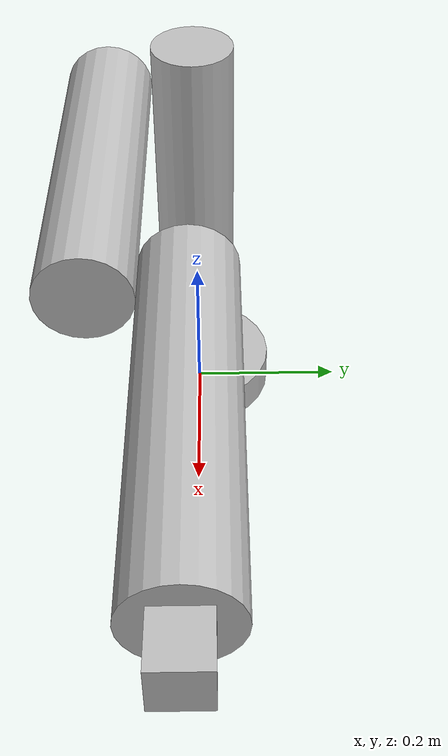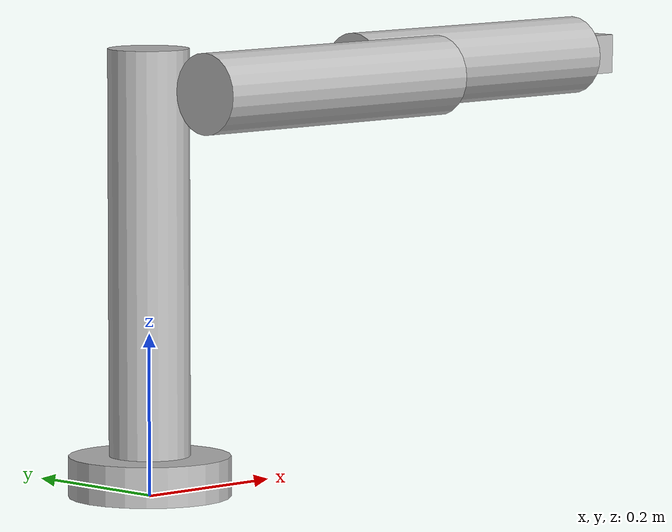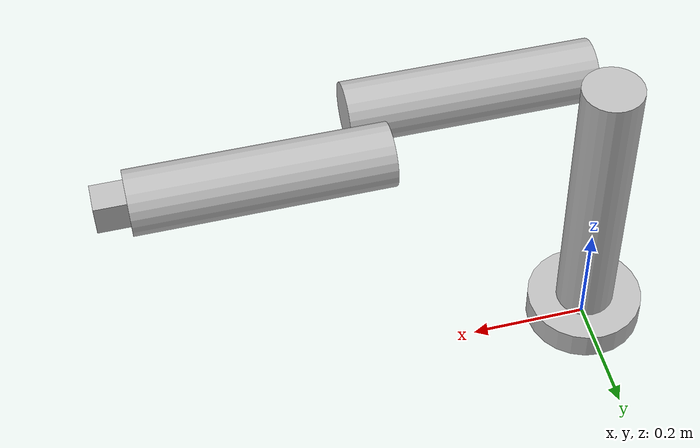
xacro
<?xml version="1.0" ?>
<robot name="kobuki_arm" xmlns:xacro="http://www.ros.org/wiki/xacro">
    <xacro:include filename="$(find arm_model)/xacro/main.urdf.xacro" />
    <xacro:include filename="$(find kobuki_description)/urdf/kobuki.urdf.xacro" />

    <!--xacro:kobuki/-->
    <xacro:arm_model/>
</robot>

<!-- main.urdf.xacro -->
<robot
	xmlns:xacro="http://www.ros.org/wiki/xacro"
	name="arm_model">
	<xacro:macro name="arm_model">
		<link name="world"/>
		<link name="base_link">
			<visual>
				<geometry>
					<cylinder length="0.05" radius="0.1"/>
				</geometry>
				<material name="silver">
					<color rgba="0.75 0.75 0.75 1"/>
				</material>
				<origin rpy="0 0 0" xyz="0 0 0.025"/>
			</visual>
			<collision>
				<geometry>
					<cylinder length="0.05" radius="0.1"/>
				</geometry>
				<origin rpy="0 0 0" xyz="0 0 0.025"/>
			</collision>
			<inertial>
				<mass value="1.0"/>
				<origin rpy="0 0 0" xyz="0 0 0.025"/>
				<inertia ixx="0.0027" iyy="0.0027" izz="0.005"
				ixy="0" ixz="0" iyz="0"/>
			</inertial>
		</link>
		<joint name="fixed" type="fixed">
			<parent link="world"/>
			<child link="base_link"/>
		</joint>
		<link name="torso">
			<visual>
				<geometry>
					<cylinder length="0.5" radius="0.05"/>
				</geometry>
				<material name="silver">
					<color rgba="0.75 0.75 0.75 1"/>
				</material>
				<origin rpy="0 0 0" xyz="0 0 0.25"/>
			</visual>
			<collision>
				<geometry>
					<cylinder length="0.5" radius="0.05"/>
				</geometry>
				<origin rpy="0 0 0" xyz="0 0 0.25"/>
			</collision>
			<inertial>
				<mass value="1.0"/>
				<origin rpy="0 0 0" xyz="0 0 0.25"/>
				<inertia ixx="0.02146" iyy="0.02146" izz="0.00125"
				ixy="0" ixz="0" iyz="0"/>
			</inertial>
		</link>
		<joint name="hip" type="continuous">
			<axis xyz="0 0 1"/>
			<parent link="base_link"/>
			<child link="torso"/>
			<origin rpy="0 0 0" xyz="0.0 0.0 0.05"/>
		</joint>
		<link name="upper_arm">
			<visual>
				<geometry>
					<cylinder length="0.4" radius="0.05"/>
				</geometry>
				<material name="silver"/>
				<origin rpy="0 0 0" xyz="0 0 0.2"/>
			</visual>
			<collision>
				<geometry>
					<cylinder length="0.4" radius="0.05"/>
				</geometry>
				<origin rpy="0 0 0" xyz="0 0 0.2"/>
			</collision>
			<inertial>
				<mass value="1.0"/>
				<origin rpy="0 0 0" xyz="0 0 0.2"/>
				<inertia ixx="0.01396" iyy="0.01396" izz="0.00125"
				ixy="0" ixz="0" iyz="0"/>
			</inertial>
		</link>
		<joint name="shoulder" type="continuous">
			<axis xyz="0 1 0"/>
			<parent link="torso"/>
			<child link="upper_arm"/>
			<origin rpy="0 1.5708 0" xyz="0.0 -0.1 0.45"/>
		</joint>
		<link name="lower_arm">
			<visual>
				<geometry>
					<cylinder length="0.4" radius="0.05"/>
				</geometry>
				<material name="silver"/>
				<origin rpy="0 0 0" xyz="0 0 0.2"/>
			</visual>
			<collision>
				<geometry>
					<cylinder length="0.4" radius="0.05"/>
				</geometry>
				<origin rpy="0 0 0" xyz="0 0 0.2"/>
			</collision>
			<inertial>
				<mass value="1.0"/>
				<origin rpy="0 0 0" xyz="0 0 0.2"/>
				<inertia ixx="0.01396" iyy="0.01396" izz="0.00125"
				ixy="0" ixz="0" iyz="0"/>
			</inertial>
		</link>
		<joint name="elbow" type="continuous">
			<axis xyz="0 1 0"/>
			<parent link="upper_arm"/>
			<child link="lower_arm"/>
			<origin rpy="0 0 0" xyz="0.0 0.1 0.35"/>
		</joint>
		<link name="hand">
			<visual>
				<geometry>
					<box size="0.05 0.05 0.05"/>
				</geometry>
				<material name="silver"/>
			</visual>
			<collision>
				<geometry>
					<box size="0.05 0.05 0.05"/>
				</geometry>
			</collision>
			<inertial>
				<mass value="1.0"/>
				<inertia ixx="0.00042" iyy="0.00042" izz="0.00042"
				ixy="0" ixz="0" iyz="0"/>
			</inertial>
		</link>
		<joint name="wrist" type="continuous">
			<axis xyz="0 1 0"/>
			<parent link="lower_arm"/>
			<child link="hand"/>
			<origin rpy="0 0 0" xyz="0.0 0.0 0.425"/>
		</joint>

		<!--Transmission Descriptions-->
		<transmission name="tran0">
			<type>transmission_interface/SimpleTransmission</type>
			<joint name="hip">
				<hardwareInterface>PositionJointInterface</hardwareInterface>
			</joint>
			<actuator name="motor0">
				<hardwareInterface>PositionJointInterface</hardwareInterface>
				<mechanicalReduction>1</mechanicalReduction>
			</actuator>
		</transmission>
		<transmission name="tran1">
			<type>transmission_interface/SimpleTransmission</type>
			<joint name="shoulder">
				<hardwareInterface>PositionJointInterface</hardwareInterface>
			</joint>
			<actuator name="motor1">
				<hardwareInterface>PositionJointInterface</hardwareInterface>
				<mechanicalReduction>1</mechanicalReduction>
			</actuator>
		</transmission>
		<transmission name="tran2">
			<type>transmission_interface/SimpleTransmission</type>
			<joint name="elbow">
				<hardwareInterface>PositionJointInterface</hardwareInterface>
			</joint>
			<actuator name="motor2">
				<hardwareInterface>PositionJointInterface</hardwareInterface>
				<mechanicalReduction>1</mechanicalReduction>
			</actuator>
		</transmission>
		<transmission name="tran3">
			<type>transmission_interface/SimpleTransmission</type>
			<joint name="wrist">
				<hardwareInterface>PositionJointInterface</hardwareInterface>
			</joint>
			<actuator name="motor3">
				<hardwareInterface>PositionJointInterface</hardwareInterface>
				<mechanicalReduction>1</mechanicalReduction>
			</actuator>
		</transmission>

		<!-- Gazebo Plugins -->
		<gazebo>
			<!--ros_control plugin-->
			<plugin name="control" filename="libgazebo_ros_control.so"/>
			<!-- joint_state_publisher plugin -->
			<plugin name="joint_state_publisher" filename="libgazebo_ros_joint_state_publisher.so">
					<jointName>hip, shoulder, elbow, wrist</jointName>
			</plugin>
		</gazebo>
	</xacro:macro>
</robot>
